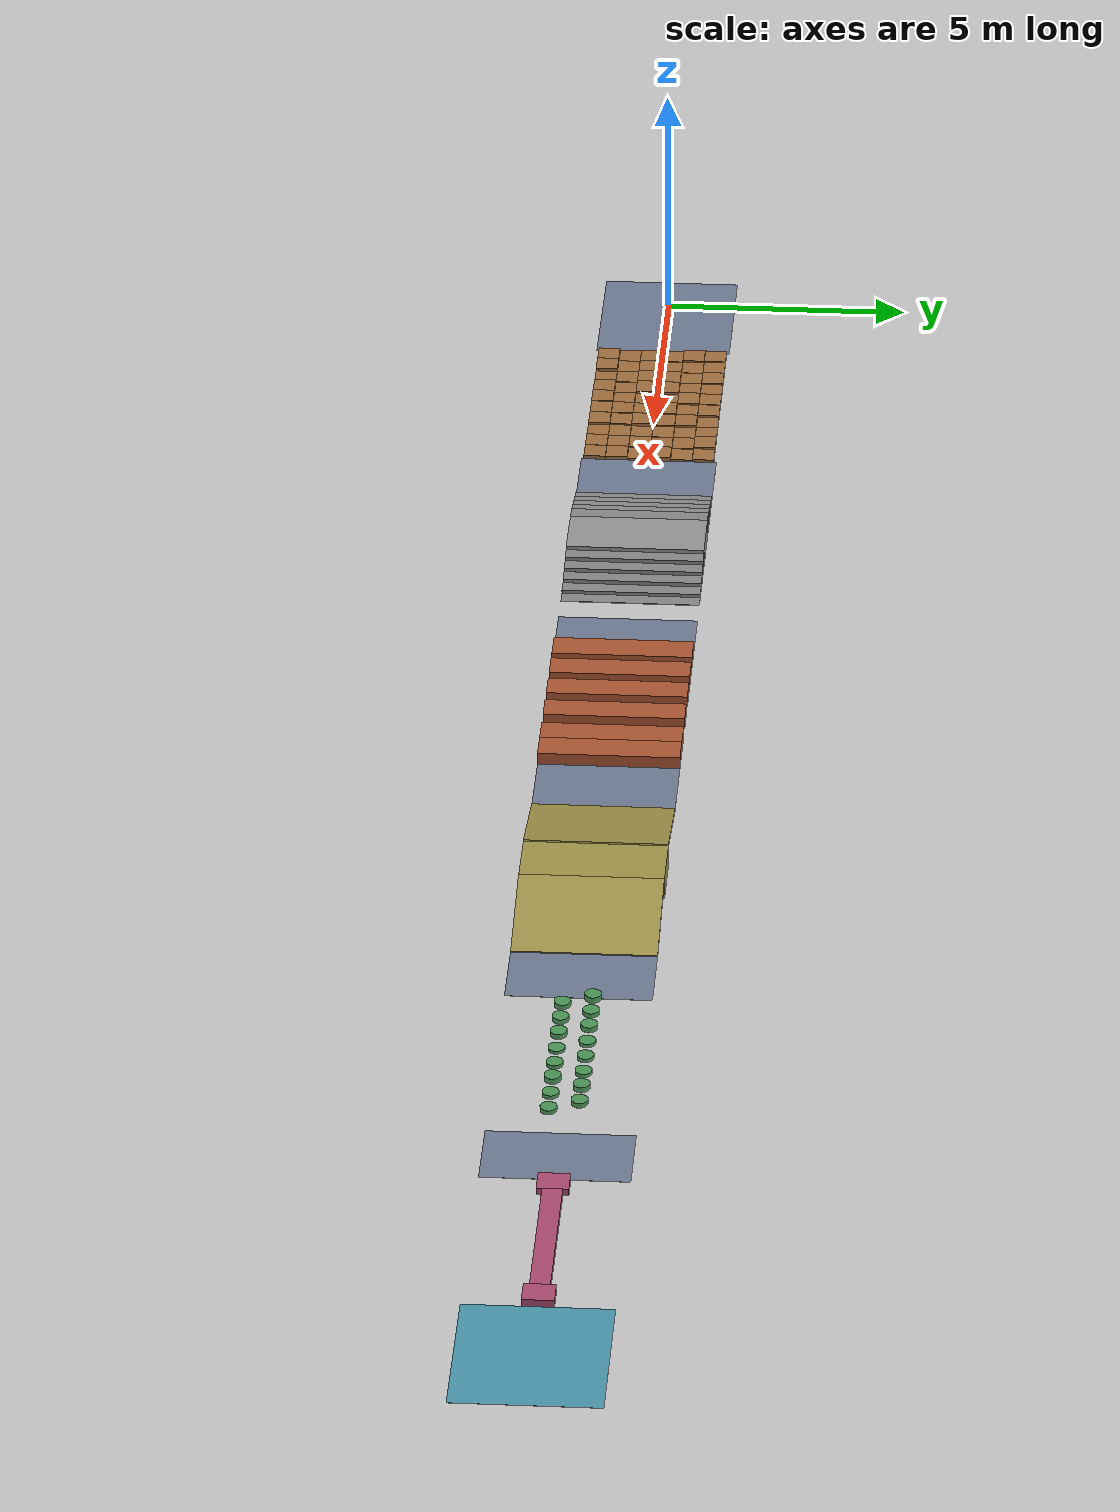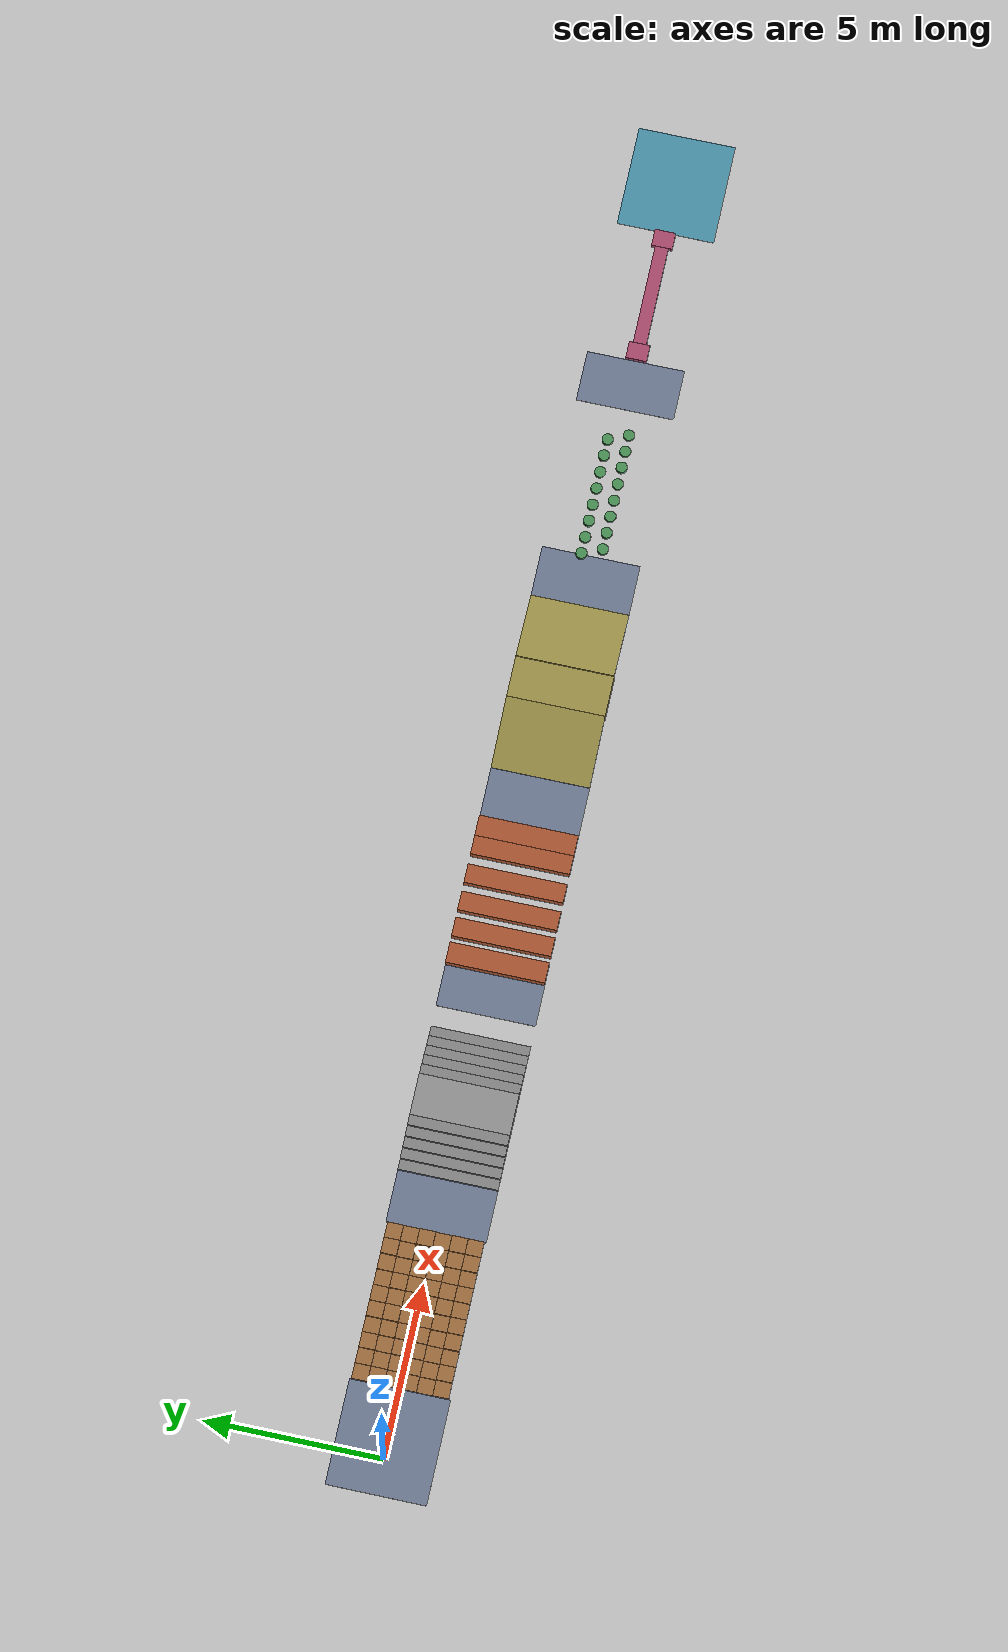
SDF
<?xml version="1.0" ?>
<!-- Auto-generated Continuous Terrain Track along X-axis for Go2 RL deployment -->
<sdf version="1.5">
    <world name="default">
        <physics type="ode">
            <max_step_size>0.0005</max_step_size>
            <real_time_factor>1</real_time_factor>
            <real_time_update_rate>2000</real_time_update_rate>
            <gravity>0 0 -9.81</gravity>
            <ode>
                <solver>
                    <type>quick</type>
                    <iters>50</iters>
                    <sor>1.3</sor>
                </solver>
                <constraints>
                    <cfm>0.0</cfm>
                    <erp>0.2</erp>
                    <contact_max_correcting_vel>10.0</contact_max_correcting_vel>
                    <contact_surface_layer>0.001</contact_surface_layer>
                </constraints>
            </ode>
        </physics>

        <scene>
            <sky>
                <clouds>
                    <speed>12</speed>
                </clouds>
            </sky>
        </scene>

        <!-- Global light source -->
        <include>
            <uri>model://sun</uri>
        </include>

        <!-- Base Ground Plane (Z = 0.0) -->
        <include>
            <uri>model://ground_plane</uri>
        </include>

        <!-- Continuous Terrain Track along X-axis -->
        <model name="terrain_track">
            <static>true</static>

            <link name="zone0_start_mat">
                <pose>0.5000 0.0000 0.001 0 0 0</pose>
                <visual name="zone0_start_mat_vis">
                    <geometry>
                        <box><size>3.0000 2.8000 0.002</size></box>
                    </geometry>
                    <material>
                        <ambient>0.3 0.3 0.35 1</ambient>
                        <diffuse>0.45 0.5 0.6 1</diffuse>
                    </material>
                </visual>
            </link>
            <link name="zone1_box_0_0">
                <pose>2.2250 -1.1250 0.0374 0 0 0</pose>
                <collision name="zone1_box_0_0_col">
                    <geometry>
                        <box><size>0.4450 0.4450 0.0748</size></box>
                    </geometry>
                </collision>
                <visual name="zone1_box_0_0_vis">
                    <geometry>
                        <box><size>0.4450 0.4450 0.0748</size></box>
                    </geometry>
                    <material>
                        <ambient>0.4 0.3 0.2 1</ambient>
                        <diffuse>0.65 0.45 0.25 1</diffuse>
                    </material>
                </visual>
            </link>
            <link name="zone1_box_0_1">
                <pose>2.2250 -0.6750 0.0159 0 0 0</pose>
                <collision name="zone1_box_0_1_col">
                    <geometry>
                        <box><size>0.4450 0.4450 0.0318</size></box>
                    </geometry>
                </collision>
                <visual name="zone1_box_0_1_vis">
                    <geometry>
                        <box><size>0.4450 0.4450 0.0318</size></box>
                    </geometry>
                    <material>
                        <ambient>0.4 0.3 0.2 1</ambient>
                        <diffuse>0.65 0.45 0.25 1</diffuse>
                    </material>
                </visual>
            </link>
            <link name="zone1_box_0_2">
                <pose>2.2250 -0.2250 0.0246 0 0 0</pose>
                <collision name="zone1_box_0_2_col">
                    <geometry>
                        <box><size>0.4450 0.4450 0.0493</size></box>
                    </geometry>
                </collision>
                <visual name="zone1_box_0_2_vis">
                    <geometry>
                        <box><size>0.4450 0.4450 0.0493</size></box>
                    </geometry>
                    <material>
                        <ambient>0.4 0.3 0.2 1</ambient>
                        <diffuse>0.65 0.45 0.25 1</diffuse>
                    </material>
                </visual>
            </link>
            <link name="zone1_box_0_3">
                <pose>2.2250 0.2250 0.0228 0 0 0</pose>
                <collision name="zone1_box_0_3_col">
                    <geometry>
                        <box><size>0.4450 0.4450 0.0456</size></box>
                    </geometry>
                </collision>
                <visual name="zone1_box_0_3_vis">
                    <geometry>
                        <box><size>0.4450 0.4450 0.0456</size></box>
                    </geometry>
                    <material>
                        <ambient>0.4 0.3 0.2 1</ambient>
                        <diffuse>0.65 0.45 0.25 1</diffuse>
                    </material>
                </visual>
            </link>
            <link name="zone1_box_0_4">
                <pose>2.2250 0.6750 0.0408 0 0 0</pose>
                <collision name="zone1_box_0_4_col">
                    <geometry>
                        <box><size>0.4450 0.4450 0.0816</size></box>
                    </geometry>
                </collision>
                <visual name="zone1_box_0_4_vis">
                    <geometry>
                        <box><size>0.4450 0.4450 0.0816</size></box>
                    </geometry>
                    <material>
                        <ambient>0.4 0.3 0.2 1</ambient>
                        <diffuse>0.65 0.45 0.25 1</diffuse>
                    </material>
                </visual>
            </link>
            <link name="zone1_box_0_5">
                <pose>2.2250 1.1250 0.0387 0 0 0</pose>
                <collision name="zone1_box_0_5_col">
                    <geometry>
                        <box><size>0.4450 0.4450 0.0774</size></box>
                    </geometry>
                </collision>
                <visual name="zone1_box_0_5_vis">
                    <geometry>
                        <box><size>0.4450 0.4450 0.0774</size></box>
                    </geometry>
                    <material>
                        <ambient>0.4 0.3 0.2 1</ambient>
                        <diffuse>0.65 0.45 0.25 1</diffuse>
                    </material>
                </visual>
            </link>
            <link name="zone1_box_1_0">
                <pose>2.6750 -1.1250 0.0462 0 0 0</pose>
                <collision name="zone1_box_1_0_col">
                    <geometry>
                        <box><size>0.4450 0.4450 0.0925</size></box>
                    </geometry>
                </collision>
                <visual name="zone1_box_1_0_vis">
                    <geometry>
                        <box><size>0.4450 0.4450 0.0925</size></box>
                    </geometry>
                    <material>
                        <ambient>0.4 0.3 0.2 1</ambient>
                        <diffuse>0.65 0.45 0.25 1</diffuse>
                    </material>
                </visual>
            </link>
            <link name="zone1_box_1_1">
                <pose>2.6750 -0.6750 0.0180 0 0 0</pose>
                <collision name="zone1_box_1_1_col">
                    <geometry>
                        <box><size>0.4450 0.4450 0.0361</size></box>
                    </geometry>
                </collision>
                <visual name="zone1_box_1_1_vis">
                    <geometry>
                        <box><size>0.4450 0.4450 0.0361</size></box>
                    </geometry>
                    <material>
                        <ambient>0.4 0.3 0.2 1</ambient>
                        <diffuse>0.65 0.45 0.25 1</diffuse>
                    </material>
                </visual>
            </link>
            <link name="zone1_box_1_2">
                <pose>2.6750 -0.2250 0.0298 0 0 0</pose>
                <collision name="zone1_box_1_2_col">
                    <geometry>
                        <box><size>0.4450 0.4450 0.0595</size></box>
                    </geometry>
                </collision>
                <visual name="zone1_box_1_2_vis">
                    <geometry>
                        <box><size>0.4450 0.4450 0.0595</size></box>
                    </geometry>
                    <material>
                        <ambient>0.4 0.3 0.2 1</ambient>
                        <diffuse>0.65 0.45 0.25 1</diffuse>
                    </material>
                </visual>
            </link>
            <link name="zone1_box_1_3">
                <pose>2.6750 0.2250 0.0160 0 0 0</pose>
                <collision name="zone1_box_1_3_col">
                    <geometry>
                        <box><size>0.4450 0.4450 0.0321</size></box>
                    </geometry>
                </collision>
                <visual name="zone1_box_1_3_vis">
                    <geometry>
                        <box><size>0.4450 0.4450 0.0321</size></box>
                    </geometry>
                    <material>
                        <ambient>0.4 0.3 0.2 1</ambient>
                        <diffuse>0.65 0.45 0.25 1</diffuse>
                    </material>
                </visual>
            </link>
            <link name="zone1_box_1_4">
                <pose>2.6750 0.6750 0.0227 0 0 0</pose>
                <collision name="zone1_box_1_4_col">
                    <geometry>
                        <box><size>0.4450 0.4450 0.0453</size></box>
                    </geometry>
                </collision>
                <visual name="zone1_box_1_4_vis">
                    <geometry>
                        <box><size>0.4450 0.4450 0.0453</size></box>
                    </geometry>
                    <material>
                        <ambient>0.4 0.3 0.2 1</ambient>
                        <diffuse>0.65 0.45 0.25 1</diffuse>
                    </material>
                </visual>
            </link>
            <link name="zone1_box_1_5">
                <pose>2.6750 1.1250 0.0327 0 0 0</pose>
                <collision name="zone1_box_1_5_col">
                    <geometry>
                        <box><size>0.4450 0.4450 0.0654</size></box>
                    </geometry>
                </collision>
                <visual name="zone1_box_1_5_vis">
                    <geometry>
                        <box><size>0.4450 0.4450 0.0654</size></box>
                    </geometry>
                    <material>
                        <ambient>0.4 0.3 0.2 1</ambient>
                        <diffuse>0.65 0.45 0.25 1</diffuse>
                    </material>
                </visual>
            </link>
            <link name="zone1_box_2_0">
                <pose>3.1250 -1.1250 0.0159 0 0 0</pose>
                <collision name="zone1_box_2_0_col">
                    <geometry>
                        <box><size>0.4450 0.4450 0.0319</size></box>
                    </geometry>
                </collision>
                <visual name="zone1_box_2_0_vis">
                    <geometry>
                        <box><size>0.4450 0.4450 0.0319</size></box>
                    </geometry>
                    <material>
                        <ambient>0.4 0.3 0.2 1</ambient>
                        <diffuse>0.65 0.45 0.25 1</diffuse>
                    </material>
                </visual>
            </link>
            <link name="zone1_box_2_1">
                <pose>3.1250 -0.6750 0.0220 0 0 0</pose>
                <collision name="zone1_box_2_1_col">
                    <geometry>
                        <box><size>0.4450 0.4450 0.0439</size></box>
                    </geometry>
                </collision>
                <visual name="zone1_box_2_1_vis">
                    <geometry>
                        <box><size>0.4450 0.4450 0.0439</size></box>
                    </geometry>
                    <material>
                        <ambient>0.4 0.3 0.2 1</ambient>
                        <diffuse>0.65 0.45 0.25 1</diffuse>
                    </material>
                </visual>
            </link>
            <link name="zone1_box_2_2">
                <pose>3.1250 -0.2250 0.0377 0 0 0</pose>
                <collision name="zone1_box_2_2_col">
                    <geometry>
                        <box><size>0.4450 0.4450 0.0755</size></box>
                    </geometry>
                </collision>
                <visual name="zone1_box_2_2_vis">
                    <geometry>
                        <box><size>0.4450 0.4450 0.0755</size></box>
                    </geometry>
                    <material>
                        <ambient>0.4 0.3 0.2 1</ambient>
                        <diffuse>0.65 0.45 0.25 1</diffuse>
                    </material>
                </visual>
            </link>
            <link name="zone1_box_2_3">
                <pose>3.1250 0.2250 0.0341 0 0 0</pose>
                <collision name="zone1_box_2_3_col">
                    <geometry>
                        <box><size>0.4450 0.4450 0.0681</size></box>
                    </geometry>
                </collision>
                <visual name="zone1_box_2_3_vis">
                    <geometry>
                        <box><size>0.4450 0.4450 0.0681</size></box>
                    </geometry>
                    <material>
                        <ambient>0.4 0.3 0.2 1</ambient>
                        <diffuse>0.65 0.45 0.25 1</diffuse>
                    </material>
                </visual>
            </link>
            <link name="zone1_box_2_4">
                <pose>3.1250 0.6750 0.0227 0 0 0</pose>
                <collision name="zone1_box_2_4_col">
                    <geometry>
                        <box><size>0.4450 0.4450 0.0454</size></box>
                    </geometry>
                </collision>
                <visual name="zone1_box_2_4_vis">
                    <geometry>
                        <box><size>0.4450 0.4450 0.0454</size></box>
                    </geometry>
                    <material>
                        <ambient>0.4 0.3 0.2 1</ambient>
                        <diffuse>0.65 0.45 0.25 1</diffuse>
                    </material>
                </visual>
            </link>
            <link name="zone1_box_2_5">
                <pose>3.1250 1.1250 0.0356 0 0 0</pose>
                <collision name="zone1_box_2_5_col">
                    <geometry>
                        <box><size>0.4450 0.4450 0.0712</size></box>
                    </geometry>
                </collision>
                <visual name="zone1_box_2_5_vis">
                    <geometry>
                        <box><size>0.4450 0.4450 0.0712</size></box>
                    </geometry>
                    <material>
                        <ambient>0.4 0.3 0.2 1</ambient>
                        <diffuse>0.65 0.45 0.25 1</diffuse>
                    </material>
                </visual>
            </link>
            <link name="zone1_box_3_0">
                <pose>3.5750 -1.1250 0.0433 0 0 0</pose>
                <collision name="zone1_box_3_0_col">
                    <geometry>
                        <box><size>0.4450 0.4450 0.0867</size></box>
                    </geometry>
                </collision>
                <visual name="zone1_box_3_0_vis">
                    <geometry>
                        <box><size>0.4450 0.4450 0.0867</size></box>
                    </geometry>
                    <material>
                        <ambient>0.4 0.3 0.2 1</ambient>
                        <diffuse>0.65 0.45 0.25 1</diffuse>
                    </material>
                </visual>
            </link>
            <link name="zone1_box_3_1">
                <pose>3.5750 -0.6750 0.0152 0 0 0</pose>
                <collision name="zone1_box_3_1_col">
                    <geometry>
                        <box><size>0.4450 0.4450 0.0305</size></box>
                    </geometry>
                </collision>
                <visual name="zone1_box_3_1_vis">
                    <geometry>
                        <box><size>0.4450 0.4450 0.0305</size></box>
                    </geometry>
                    <material>
                        <ambient>0.4 0.3 0.2 1</ambient>
                        <diffuse>0.65 0.45 0.25 1</diffuse>
                    </material>
                </visual>
            </link>
            <link name="zone1_box_3_2">
                <pose>3.5750 -0.2250 0.0432 0 0 0</pose>
                <collision name="zone1_box_3_2_col">
                    <geometry>
                        <box><size>0.4450 0.4450 0.0864</size></box>
                    </geometry>
                </collision>
                <visual name="zone1_box_3_2_vis">
                    <geometry>
                        <box><size>0.4450 0.4450 0.0864</size></box>
                    </geometry>
                    <material>
                        <ambient>0.4 0.3 0.2 1</ambient>
                        <diffuse>0.65 0.45 0.25 1</diffuse>
                    </material>
                </visual>
            </link>
            <link name="zone1_box_3_3">
                <pose>3.5750 0.2250 0.0394 0 0 0</pose>
                <collision name="zone1_box_3_3_col">
                    <geometry>
                        <box><size>0.4450 0.4450 0.0789</size></box>
                    </geometry>
                </collision>
                <visual name="zone1_box_3_3_vis">
                    <geometry>
                        <box><size>0.4450 0.4450 0.0789</size></box>
                    </geometry>
                    <material>
                        <ambient>0.4 0.3 0.2 1</ambient>
                        <diffuse>0.65 0.45 0.25 1</diffuse>
                    </material>
                </visual>
            </link>
            <link name="zone1_box_3_4">
                <pose>3.5750 0.6750 0.0269 0 0 0</pose>
                <collision name="zone1_box_3_4_col">
                    <geometry>
                        <box><size>0.4450 0.4450 0.0538</size></box>
                    </geometry>
                </collision>
                <visual name="zone1_box_3_4_vis">
                    <geometry>
                        <box><size>0.4450 0.4450 0.0538</size></box>
                    </geometry>
                    <material>
                        <ambient>0.4 0.3 0.2 1</ambient>
                        <diffuse>0.65 0.45 0.25 1</diffuse>
                    </material>
                </visual>
            </link>
            <link name="zone1_box_3_5">
                <pose>3.5750 1.1250 0.0204 0 0 0</pose>
                <collision name="zone1_box_3_5_col">
                    <geometry>
                        <box><size>0.4450 0.4450 0.0409</size></box>
                    </geometry>
                </collision>
                <visual name="zone1_box_3_5_vis">
                    <geometry>
                        <box><size>0.4450 0.4450 0.0409</size></box>
                    </geometry>
                    <material>
                        <ambient>0.4 0.3 0.2 1</ambient>
                        <diffuse>0.65 0.45 0.25 1</diffuse>
                    </material>
                </visual>
            </link>
            <link name="zone1_box_4_0">
                <pose>4.0250 -1.1250 0.0485 0 0 0</pose>
                <collision name="zone1_box_4_0_col">
                    <geometry>
                        <box><size>0.4450 0.4450 0.0970</size></box>
                    </geometry>
                </collision>
                <visual name="zone1_box_4_0_vis">
                    <geometry>
                        <box><size>0.4450 0.4450 0.0970</size></box>
                    </geometry>
                    <material>
                        <ambient>0.4 0.3 0.2 1</ambient>
                        <diffuse>0.65 0.45 0.25 1</diffuse>
                    </material>
                </visual>
            </link>
            <link name="zone1_box_4_1">
                <pose>4.0250 -0.6750 0.0268 0 0 0</pose>
                <collision name="zone1_box_4_1_col">
                    <geometry>
                        <box><size>0.4450 0.4450 0.0536</size></box>
                    </geometry>
                </collision>
                <visual name="zone1_box_4_1_vis">
                    <geometry>
                        <box><size>0.4450 0.4450 0.0536</size></box>
                    </geometry>
                    <material>
                        <ambient>0.4 0.3 0.2 1</ambient>
                        <diffuse>0.65 0.45 0.25 1</diffuse>
                    </material>
                </visual>
            </link>
            <link name="zone1_box_4_2">
                <pose>4.0250 -0.2250 0.0182 0 0 0</pose>
                <collision name="zone1_box_4_2_col">
                    <geometry>
                        <box><size>0.4450 0.4450 0.0365</size></box>
                    </geometry>
                </collision>
                <visual name="zone1_box_4_2_vis">
                    <geometry>
                        <box><size>0.4450 0.4450 0.0365</size></box>
                    </geometry>
                    <material>
                        <ambient>0.4 0.3 0.2 1</ambient>
                        <diffuse>0.65 0.45 0.25 1</diffuse>
                    </material>
                </visual>
            </link>
            <link name="zone1_box_4_3">
                <pose>4.0250 0.2250 0.0184 0 0 0</pose>
                <collision name="zone1_box_4_3_col">
                    <geometry>
                        <box><size>0.4450 0.4450 0.0368</size></box>
                    </geometry>
                </collision>
                <visual name="zone1_box_4_3_vis">
                    <geometry>
                        <box><size>0.4450 0.4450 0.0368</size></box>
                    </geometry>
                    <material>
                        <ambient>0.4 0.3 0.2 1</ambient>
                        <diffuse>0.65 0.45 0.25 1</diffuse>
                    </material>
                </visual>
            </link>
            <link name="zone1_box_4_4">
                <pose>4.0250 0.6750 0.0447 0 0 0</pose>
                <collision name="zone1_box_4_4_col">
                    <geometry>
                        <box><size>0.4450 0.4450 0.0893</size></box>
                    </geometry>
                </collision>
                <visual name="zone1_box_4_4_vis">
                    <geometry>
                        <box><size>0.4450 0.4450 0.0893</size></box>
                    </geometry>
                    <material>
                        <ambient>0.4 0.3 0.2 1</ambient>
                        <diffuse>0.65 0.45 0.25 1</diffuse>
                    </material>
                </visual>
            </link>
            <link name="zone1_box_4_5">
                <pose>4.0250 1.1250 0.0361 0 0 0</pose>
                <collision name="zone1_box_4_5_col">
                    <geometry>
                        <box><size>0.4450 0.4450 0.0723</size></box>
                    </geometry>
                </collision>
                <visual name="zone1_box_4_5_vis">
                    <geometry>
                        <box><size>0.4450 0.4450 0.0723</size></box>
                    </geometry>
                    <material>
                        <ambient>0.4 0.3 0.2 1</ambient>
                        <diffuse>0.65 0.45 0.25 1</diffuse>
                    </material>
                </visual>
            </link>
            <link name="zone1_box_5_0">
                <pose>4.4750 -1.1250 0.0432 0 0 0</pose>
                <collision name="zone1_box_5_0_col">
                    <geometry>
                        <box><size>0.4450 0.4450 0.0865</size></box>
                    </geometry>
                </collision>
                <visual name="zone1_box_5_0_vis">
                    <geometry>
                        <box><size>0.4450 0.4450 0.0865</size></box>
                    </geometry>
                    <material>
                        <ambient>0.4 0.3 0.2 1</ambient>
                        <diffuse>0.65 0.45 0.25 1</diffuse>
                    </material>
                </visual>
            </link>
            <link name="zone1_box_5_1">
                <pose>4.4750 -0.6750 0.0405 0 0 0</pose>
                <collision name="zone1_box_5_1_col">
                    <geometry>
                        <box><size>0.4450 0.4450 0.0811</size></box>
                    </geometry>
                </collision>
                <visual name="zone1_box_5_1_vis">
                    <geometry>
                        <box><size>0.4450 0.4450 0.0811</size></box>
                    </geometry>
                    <material>
                        <ambient>0.4 0.3 0.2 1</ambient>
                        <diffuse>0.65 0.45 0.25 1</diffuse>
                    </material>
                </visual>
            </link>
            <link name="zone1_box_5_2">
                <pose>4.4750 -0.2250 0.0338 0 0 0</pose>
                <collision name="zone1_box_5_2_col">
                    <geometry>
                        <box><size>0.4450 0.4450 0.0675</size></box>
                    </geometry>
                </collision>
                <visual name="zone1_box_5_2_vis">
                    <geometry>
                        <box><size>0.4450 0.4450 0.0675</size></box>
                    </geometry>
                    <material>
                        <ambient>0.4 0.3 0.2 1</ambient>
                        <diffuse>0.65 0.45 0.25 1</diffuse>
                    </material>
                </visual>
            </link>
            <link name="zone1_box_5_3">
                <pose>4.4750 0.2250 0.0491 0 0 0</pose>
                <collision name="zone1_box_5_3_col">
                    <geometry>
                        <box><size>0.4450 0.4450 0.0981</size></box>
                    </geometry>
                </collision>
                <visual name="zone1_box_5_3_vis">
                    <geometry>
                        <box><size>0.4450 0.4450 0.0981</size></box>
                    </geometry>
                    <material>
                        <ambient>0.4 0.3 0.2 1</ambient>
                        <diffuse>0.65 0.45 0.25 1</diffuse>
                    </material>
                </visual>
            </link>
            <link name="zone1_box_5_4">
                <pose>4.4750 0.6750 0.0282 0 0 0</pose>
                <collision name="zone1_box_5_4_col">
                    <geometry>
                        <box><size>0.4450 0.4450 0.0565</size></box>
                    </geometry>
                </collision>
                <visual name="zone1_box_5_4_vis">
                    <geometry>
                        <box><size>0.4450 0.4450 0.0565</size></box>
                    </geometry>
                    <material>
                        <ambient>0.4 0.3 0.2 1</ambient>
                        <diffuse>0.65 0.45 0.25 1</diffuse>
                    </material>
                </visual>
            </link>
            <link name="zone1_box_5_5">
                <pose>4.4750 1.1250 0.0343 0 0 0</pose>
                <collision name="zone1_box_5_5_col">
                    <geometry>
                        <box><size>0.4450 0.4450 0.0686</size></box>
                    </geometry>
                </collision>
                <visual name="zone1_box_5_5_vis">
                    <geometry>
                        <box><size>0.4450 0.4450 0.0686</size></box>
                    </geometry>
                    <material>
                        <ambient>0.4 0.3 0.2 1</ambient>
                        <diffuse>0.65 0.45 0.25 1</diffuse>
                    </material>
                </visual>
            </link>
            <link name="zone1_box_6_0">
                <pose>4.9250 -1.1250 0.0440 0 0 0</pose>
                <collision name="zone1_box_6_0_col">
                    <geometry>
                        <box><size>0.4450 0.4450 0.0881</size></box>
                    </geometry>
                </collision>
                <visual name="zone1_box_6_0_vis">
                    <geometry>
                        <box><size>0.4450 0.4450 0.0881</size></box>
                    </geometry>
                    <material>
                        <ambient>0.4 0.3 0.2 1</ambient>
                        <diffuse>0.65 0.45 0.25 1</diffuse>
                    </material>
                </visual>
            </link>
            <link name="zone1_box_6_1">
                <pose>4.9250 -0.6750 0.0366 0 0 0</pose>
                <collision name="zone1_box_6_1_col">
                    <geometry>
                        <box><size>0.4450 0.4450 0.0733</size></box>
                    </geometry>
                </collision>
                <visual name="zone1_box_6_1_vis">
                    <geometry>
                        <box><size>0.4450 0.4450 0.0733</size></box>
                    </geometry>
                    <material>
                        <ambient>0.4 0.3 0.2 1</ambient>
                        <diffuse>0.65 0.45 0.25 1</diffuse>
                    </material>
                </visual>
            </link>
            <link name="zone1_box_6_2">
                <pose>4.9250 -0.2250 0.0452 0 0 0</pose>
                <collision name="zone1_box_6_2_col">
                    <geometry>
                        <box><size>0.4450 0.4450 0.0903</size></box>
                    </geometry>
                </collision>
                <visual name="zone1_box_6_2_vis">
                    <geometry>
                        <box><size>0.4450 0.4450 0.0903</size></box>
                    </geometry>
                    <material>
                        <ambient>0.4 0.3 0.2 1</ambient>
                        <diffuse>0.65 0.45 0.25 1</diffuse>
                    </material>
                </visual>
            </link>
            <link name="zone1_box_6_3">
                <pose>4.9250 0.2250 0.0352 0 0 0</pose>
                <collision name="zone1_box_6_3_col">
                    <geometry>
                        <box><size>0.4450 0.4450 0.0704</size></box>
                    </geometry>
                </collision>
                <visual name="zone1_box_6_3_vis">
                    <geometry>
                        <box><size>0.4450 0.4450 0.0704</size></box>
                    </geometry>
                    <material>
                        <ambient>0.4 0.3 0.2 1</ambient>
                        <diffuse>0.65 0.45 0.25 1</diffuse>
                    </material>
                </visual>
            </link>
            <link name="zone1_box_6_4">
                <pose>4.9250 0.6750 0.0397 0 0 0</pose>
                <collision name="zone1_box_6_4_col">
                    <geometry>
                        <box><size>0.4450 0.4450 0.0793</size></box>
                    </geometry>
                </collision>
                <visual name="zone1_box_6_4_vis">
                    <geometry>
                        <box><size>0.4450 0.4450 0.0793</size></box>
                    </geometry>
                    <material>
                        <ambient>0.4 0.3 0.2 1</ambient>
                        <diffuse>0.65 0.45 0.25 1</diffuse>
                    </material>
                </visual>
            </link>
            <link name="zone1_box_6_5">
                <pose>4.9250 1.1250 0.0166 0 0 0</pose>
                <collision name="zone1_box_6_5_col">
                    <geometry>
                        <box><size>0.4450 0.4450 0.0332</size></box>
                    </geometry>
                </collision>
                <visual name="zone1_box_6_5_vis">
                    <geometry>
                        <box><size>0.4450 0.4450 0.0332</size></box>
                    </geometry>
                    <material>
                        <ambient>0.4 0.3 0.2 1</ambient>
                        <diffuse>0.65 0.45 0.25 1</diffuse>
                    </material>
                </visual>
            </link>
            <link name="zone1_box_7_0">
                <pose>5.3750 -1.1250 0.0230 0 0 0</pose>
                <collision name="zone1_box_7_0_col">
                    <geometry>
                        <box><size>0.4450 0.4450 0.0460</size></box>
                    </geometry>
                </collision>
                <visual name="zone1_box_7_0_vis">
                    <geometry>
                        <box><size>0.4450 0.4450 0.0460</size></box>
                    </geometry>
                    <material>
                        <ambient>0.4 0.3 0.2 1</ambient>
                        <diffuse>0.65 0.45 0.25 1</diffuse>
                    </material>
                </visual>
            </link>
            <link name="zone1_box_7_1">
                <pose>5.3750 -0.6750 0.0251 0 0 0</pose>
                <collision name="zone1_box_7_1_col">
                    <geometry>
                        <box><size>0.4450 0.4450 0.0503</size></box>
                    </geometry>
                </collision>
                <visual name="zone1_box_7_1_vis">
                    <geometry>
                        <box><size>0.4450 0.4450 0.0503</size></box>
                    </geometry>
                    <material>
                        <ambient>0.4 0.3 0.2 1</ambient>
                        <diffuse>0.65 0.45 0.25 1</diffuse>
                    </material>
                </visual>
            </link>
            <link name="zone1_box_7_2">
                <pose>5.3750 -0.2250 0.0178 0 0 0</pose>
                <collision name="zone1_box_7_2_col">
                    <geometry>
                        <box><size>0.4450 0.4450 0.0356</size></box>
                    </geometry>
                </collision>
                <visual name="zone1_box_7_2_vis">
                    <geometry>
                        <box><size>0.4450 0.4450 0.0356</size></box>
                    </geometry>
                    <material>
                        <ambient>0.4 0.3 0.2 1</ambient>
                        <diffuse>0.65 0.45 0.25 1</diffuse>
                    </material>
                </visual>
            </link>
            <link name="zone1_box_7_3">
                <pose>5.3750 0.2250 0.0231 0 0 0</pose>
                <collision name="zone1_box_7_3_col">
                    <geometry>
                        <box><size>0.4450 0.4450 0.0463</size></box>
                    </geometry>
                </collision>
                <visual name="zone1_box_7_3_vis">
                    <geometry>
                        <box><size>0.4450 0.4450 0.0463</size></box>
                    </geometry>
                    <material>
                        <ambient>0.4 0.3 0.2 1</ambient>
                        <diffuse>0.65 0.45 0.25 1</diffuse>
                    </material>
                </visual>
            </link>
            <link name="zone1_box_7_4">
                <pose>5.3750 0.6750 0.0185 0 0 0</pose>
                <collision name="zone1_box_7_4_col">
                    <geometry>
                        <box><size>0.4450 0.4450 0.0371</size></box>
                    </geometry>
                </collision>
                <visual name="zone1_box_7_4_vis">
                    <geometry>
                        <box><size>0.4450 0.4450 0.0371</size></box>
                    </geometry>
                    <material>
                        <ambient>0.4 0.3 0.2 1</ambient>
                        <diffuse>0.65 0.45 0.25 1</diffuse>
                    </material>
                </visual>
            </link>
            <link name="zone1_box_7_5">
                <pose>5.3750 1.1250 0.0247 0 0 0</pose>
                <collision name="zone1_box_7_5_col">
                    <geometry>
                        <box><size>0.4450 0.4450 0.0495</size></box>
                    </geometry>
                </collision>
                <visual name="zone1_box_7_5_vis">
                    <geometry>
                        <box><size>0.4450 0.4450 0.0495</size></box>
                    </geometry>
                    <material>
                        <ambient>0.4 0.3 0.2 1</ambient>
                        <diffuse>0.65 0.45 0.25 1</diffuse>
                    </material>
                </visual>
            </link>
            <link name="zone1_box_8_0">
                <pose>5.8250 -1.1250 0.0372 0 0 0</pose>
                <collision name="zone1_box_8_0_col">
                    <geometry>
                        <box><size>0.4450 0.4450 0.0745</size></box>
                    </geometry>
                </collision>
                <visual name="zone1_box_8_0_vis">
                    <geometry>
                        <box><size>0.4450 0.4450 0.0745</size></box>
                    </geometry>
                    <material>
                        <ambient>0.4 0.3 0.2 1</ambient>
                        <diffuse>0.65 0.45 0.25 1</diffuse>
                    </material>
                </visual>
            </link>
            <link name="zone1_box_8_1">
                <pose>5.8250 -0.6750 0.0278 0 0 0</pose>
                <collision name="zone1_box_8_1_col">
                    <geometry>
                        <box><size>0.4450 0.4450 0.0555</size></box>
                    </geometry>
                </collision>
                <visual name="zone1_box_8_1_vis">
                    <geometry>
                        <box><size>0.4450 0.4450 0.0555</size></box>
                    </geometry>
                    <material>
                        <ambient>0.4 0.3 0.2 1</ambient>
                        <diffuse>0.65 0.45 0.25 1</diffuse>
                    </material>
                </visual>
            </link>
            <link name="zone1_box_8_2">
                <pose>5.8250 -0.2250 0.0280 0 0 0</pose>
                <collision name="zone1_box_8_2_col">
                    <geometry>
                        <box><size>0.4450 0.4450 0.0559</size></box>
                    </geometry>
                </collision>
                <visual name="zone1_box_8_2_vis">
                    <geometry>
                        <box><size>0.4450 0.4450 0.0559</size></box>
                    </geometry>
                    <material>
                        <ambient>0.4 0.3 0.2 1</ambient>
                        <diffuse>0.65 0.45 0.25 1</diffuse>
                    </material>
                </visual>
            </link>
            <link name="zone1_box_8_3">
                <pose>5.8250 0.2250 0.0223 0 0 0</pose>
                <collision name="zone1_box_8_3_col">
                    <geometry>
                        <box><size>0.4450 0.4450 0.0447</size></box>
                    </geometry>
                </collision>
                <visual name="zone1_box_8_3_vis">
                    <geometry>
                        <box><size>0.4450 0.4450 0.0447</size></box>
                    </geometry>
                    <material>
                        <ambient>0.4 0.3 0.2 1</ambient>
                        <diffuse>0.65 0.45 0.25 1</diffuse>
                    </material>
                </visual>
            </link>
            <link name="zone1_box_8_4">
                <pose>5.8250 0.6750 0.0243 0 0 0</pose>
                <collision name="zone1_box_8_4_col">
                    <geometry>
                        <box><size>0.4450 0.4450 0.0487</size></box>
                    </geometry>
                </collision>
                <visual name="zone1_box_8_4_vis">
                    <geometry>
                        <box><size>0.4450 0.4450 0.0487</size></box>
                    </geometry>
                    <material>
                        <ambient>0.4 0.3 0.2 1</ambient>
                        <diffuse>0.65 0.45 0.25 1</diffuse>
                    </material>
                </visual>
            </link>
            <link name="zone1_box_8_5">
                <pose>5.8250 1.1250 0.0478 0 0 0</pose>
                <collision name="zone1_box_8_5_col">
                    <geometry>
                        <box><size>0.4450 0.4450 0.0956</size></box>
                    </geometry>
                </collision>
                <visual name="zone1_box_8_5_vis">
                    <geometry>
                        <box><size>0.4450 0.4450 0.0956</size></box>
                    </geometry>
                    <material>
                        <ambient>0.4 0.3 0.2 1</ambient>
                        <diffuse>0.65 0.45 0.25 1</diffuse>
                    </material>
                </visual>
            </link>
            <link name="zone1_box_9_0">
                <pose>6.2750 -1.1250 0.0377 0 0 0</pose>
                <collision name="zone1_box_9_0_col">
                    <geometry>
                        <box><size>0.4450 0.4450 0.0754</size></box>
                    </geometry>
                </collision>
                <visual name="zone1_box_9_0_vis">
                    <geometry>
                        <box><size>0.4450 0.4450 0.0754</size></box>
                    </geometry>
                    <material>
                        <ambient>0.4 0.3 0.2 1</ambient>
                        <diffuse>0.65 0.45 0.25 1</diffuse>
                    </material>
                </visual>
            </link>
            <link name="zone1_box_9_1">
                <pose>6.2750 -0.6750 0.0363 0 0 0</pose>
                <collision name="zone1_box_9_1_col">
                    <geometry>
                        <box><size>0.4450 0.4450 0.0726</size></box>
                    </geometry>
                </collision>
                <visual name="zone1_box_9_1_vis">
                    <geometry>
                        <box><size>0.4450 0.4450 0.0726</size></box>
                    </geometry>
                    <material>
                        <ambient>0.4 0.3 0.2 1</ambient>
                        <diffuse>0.65 0.45 0.25 1</diffuse>
                    </material>
                </visual>
            </link>
            <link name="zone1_box_9_2">
                <pose>6.2750 -0.2250 0.0210 0 0 0</pose>
                <collision name="zone1_box_9_2_col">
                    <geometry>
                        <box><size>0.4450 0.4450 0.0420</size></box>
                    </geometry>
                </collision>
                <visual name="zone1_box_9_2_vis">
                    <geometry>
                        <box><size>0.4450 0.4450 0.0420</size></box>
                    </geometry>
                    <material>
                        <ambient>0.4 0.3 0.2 1</ambient>
                        <diffuse>0.65 0.45 0.25 1</diffuse>
                    </material>
                </visual>
            </link>
            <link name="zone1_box_9_3">
                <pose>6.2750 0.2250 0.0405 0 0 0</pose>
                <collision name="zone1_box_9_3_col">
                    <geometry>
                        <box><size>0.4450 0.4450 0.0810</size></box>
                    </geometry>
                </collision>
                <visual name="zone1_box_9_3_vis">
                    <geometry>
                        <box><size>0.4450 0.4450 0.0810</size></box>
                    </geometry>
                    <material>
                        <ambient>0.4 0.3 0.2 1</ambient>
                        <diffuse>0.65 0.45 0.25 1</diffuse>
                    </material>
                </visual>
            </link>
            <link name="zone1_box_9_4">
                <pose>6.2750 0.6750 0.0207 0 0 0</pose>
                <collision name="zone1_box_9_4_col">
                    <geometry>
                        <box><size>0.4450 0.4450 0.0414</size></box>
                    </geometry>
                </collision>
                <visual name="zone1_box_9_4_vis">
                    <geometry>
                        <box><size>0.4450 0.4450 0.0414</size></box>
                    </geometry>
                    <material>
                        <ambient>0.4 0.3 0.2 1</ambient>
                        <diffuse>0.65 0.45 0.25 1</diffuse>
                    </material>
                </visual>
            </link>
            <link name="zone1_box_9_5">
                <pose>6.2750 1.1250 0.0283 0 0 0</pose>
                <collision name="zone1_box_9_5_col">
                    <geometry>
                        <box><size>0.4450 0.4450 0.0566</size></box>
                    </geometry>
                </collision>
                <visual name="zone1_box_9_5_vis">
                    <geometry>
                        <box><size>0.4450 0.4450 0.0566</size></box>
                    </geometry>
                    <material>
                        <ambient>0.4 0.3 0.2 1</ambient>
                        <diffuse>0.65 0.45 0.25 1</diffuse>
                    </material>
                </visual>
            </link>
            <link name="trans1_mat">
                <pose>7.2500 0.0000 0.001 0 0 0</pose>
                <visual name="trans1_mat_vis">
                    <geometry>
                        <box><size>1.5000 2.8000 0.002</size></box>
                    </geometry>
                    <material>
                        <ambient>0.3 0.3 0.35 1</ambient>
                        <diffuse>0.45 0.5 0.6 1</diffuse>
                    </material>
                </visual>
            </link>
            <link name="zone2_stair_up_0">
                <pose>8.1500 0.0000 0.0400 0 0 0</pose>
                <collision name="zone2_stair_up_0_col">
                    <geometry>
                        <box><size>0.3000 2.8000 0.0800</size></box>
                    </geometry>
                </collision>
                <visual name="zone2_stair_up_0_vis">
                    <geometry>
                        <box><size>0.3000 2.8000 0.0800</size></box>
                    </geometry>
                    <material>
                        <ambient>0.35 0.35 0.35 1</ambient>
                        <diffuse>0.55 0.55 0.55 1</diffuse>
                    </material>
                </visual>
            </link>
            <link name="zone2_stair_up_1">
                <pose>8.4500 0.0000 0.0800 0 0 0</pose>
                <collision name="zone2_stair_up_1_col">
                    <geometry>
                        <box><size>0.3000 2.8000 0.1600</size></box>
                    </geometry>
                </collision>
                <visual name="zone2_stair_up_1_vis">
                    <geometry>
                        <box><size>0.3000 2.8000 0.1600</size></box>
                    </geometry>
                    <material>
                        <ambient>0.35 0.35 0.35 1</ambient>
                        <diffuse>0.55 0.55 0.55 1</diffuse>
                    </material>
                </visual>
            </link>
            <link name="zone2_stair_up_2">
                <pose>8.7500 0.0000 0.1200 0 0 0</pose>
                <collision name="zone2_stair_up_2_col">
                    <geometry>
                        <box><size>0.3000 2.8000 0.2400</size></box>
                    </geometry>
                </collision>
                <visual name="zone2_stair_up_2_vis">
                    <geometry>
                        <box><size>0.3000 2.8000 0.2400</size></box>
                    </geometry>
                    <material>
                        <ambient>0.35 0.35 0.35 1</ambient>
                        <diffuse>0.55 0.55 0.55 1</diffuse>
                    </material>
                </visual>
            </link>
            <link name="zone2_stair_up_3">
                <pose>9.0500 0.0000 0.1600 0 0 0</pose>
                <collision name="zone2_stair_up_3_col">
                    <geometry>
                        <box><size>0.3000 2.8000 0.3200</size></box>
                    </geometry>
                </collision>
                <visual name="zone2_stair_up_3_vis">
                    <geometry>
                        <box><size>0.3000 2.8000 0.3200</size></box>
                    </geometry>
                    <material>
                        <ambient>0.35 0.35 0.35 1</ambient>
                        <diffuse>0.55 0.55 0.55 1</diffuse>
                    </material>
                </visual>
            </link>
            <link name="zone2_stair_up_4">
                <pose>9.3500 0.0000 0.2000 0 0 0</pose>
                <collision name="zone2_stair_up_4_col">
                    <geometry>
                        <box><size>0.3000 2.8000 0.4000</size></box>
                    </geometry>
                </collision>
                <visual name="zone2_stair_up_4_vis">
                    <geometry>
                        <box><size>0.3000 2.8000 0.4000</size></box>
                    </geometry>
                    <material>
                        <ambient>0.35 0.35 0.35 1</ambient>
                        <diffuse>0.55 0.55 0.55 1</diffuse>
                    </material>
                </visual>
            </link>
            <link name="zone2_stairs_top">
                <pose>10.1000 0.0000 0.2000 0 0 0</pose>
                <collision name="zone2_stairs_top_col">
                    <geometry>
                        <box><size>1.2000 2.8000 0.4000</size></box>
                    </geometry>
                </collision>
                <visual name="zone2_stairs_top_vis">
                    <geometry>
                        <box><size>1.2000 2.8000 0.4000</size></box>
                    </geometry>
                    <material>
                        <ambient>0.4 0.4 0.4 1</ambient>
                        <diffuse>0.6 0.6 0.6 1</diffuse>
                    </material>
                </visual>
            </link>
            <link name="zone2_stair_down_0">
                <pose>10.8500 0.0000 0.1600 0 0 0</pose>
                <collision name="zone2_stair_down_0_col">
                    <geometry>
                        <box><size>0.3000 2.8000 0.3200</size></box>
                    </geometry>
                </collision>
                <visual name="zone2_stair_down_0_vis">
                    <geometry>
                        <box><size>0.3000 2.8000 0.3200</size></box>
                    </geometry>
                    <material>
                        <ambient>0.35 0.35 0.35 1</ambient>
                        <diffuse>0.55 0.55 0.55 1</diffuse>
                    </material>
                </visual>
            </link>
            <link name="zone2_stair_down_1">
                <pose>11.1500 0.0000 0.1200 0 0 0</pose>
                <collision name="zone2_stair_down_1_col">
                    <geometry>
                        <box><size>0.3000 2.8000 0.2400</size></box>
                    </geometry>
                </collision>
                <visual name="zone2_stair_down_1_vis">
                    <geometry>
                        <box><size>0.3000 2.8000 0.2400</size></box>
                    </geometry>
                    <material>
                        <ambient>0.35 0.35 0.35 1</ambient>
                        <diffuse>0.55 0.55 0.55 1</diffuse>
                    </material>
                </visual>
            </link>
            <link name="zone2_stair_down_2">
                <pose>11.4500 0.0000 0.0800 0 0 0</pose>
                <collision name="zone2_stair_down_2_col">
                    <geometry>
                        <box><size>0.3000 2.8000 0.1600</size></box>
                    </geometry>
                </collision>
                <visual name="zone2_stair_down_2_vis">
                    <geometry>
                        <box><size>0.3000 2.8000 0.1600</size></box>
                    </geometry>
                    <material>
                        <ambient>0.35 0.35 0.35 1</ambient>
                        <diffuse>0.55 0.55 0.55 1</diffuse>
                    </material>
                </visual>
            </link>
            <link name="zone2_stair_down_3">
                <pose>11.7500 0.0000 0.0400 0 0 0</pose>
                <collision name="zone2_stair_down_3_col">
                    <geometry>
                        <box><size>0.3000 2.8000 0.0800</size></box>
                    </geometry>
                </collision>
                <visual name="zone2_stair_down_3_vis">
                    <geometry>
                        <box><size>0.3000 2.8000 0.0800</size></box>
                    </geometry>
                    <material>
                        <ambient>0.35 0.35 0.35 1</ambient>
                        <diffuse>0.55 0.55 0.55 1</diffuse>
                    </material>
                </visual>
            </link>
            <link name="zone2_stair_down_4">
                <pose>12.0500 0.0000 0.0050 0 0 0</pose>
                <collision name="zone2_stair_down_4_col">
                    <geometry>
                        <box><size>0.3000 2.8000 0.0100</size></box>
                    </geometry>
                </collision>
                <visual name="zone2_stair_down_4_vis">
                    <geometry>
                        <box><size>0.3000 2.8000 0.0100</size></box>
                    </geometry>
                    <material>
                        <ambient>0.35 0.35 0.35 1</ambient>
                        <diffuse>0.55 0.55 0.55 1</diffuse>
                    </material>
                </visual>
            </link>
            <link name="trans2_mat">
                <pose>13.4000 0.0000 0.001 0 0 0</pose>
                <visual name="trans2_mat_vis">
                    <geometry>
                        <box><size>1.2000 2.8000 0.002</size></box>
                    </geometry>
                    <material>
                        <ambient>0.3 0.3 0.35 1</ambient>
                        <diffuse>0.45 0.5 0.6 1</diffuse>
                    </material>
                </visual>
            </link>
            <link name="zone3_entry_step">
                <pose>14.3000 0.0000 0.1250 0 0 0</pose>
                <collision name="zone3_entry_step_col">
                    <geometry>
                        <box><size>0.6000 2.8000 0.2500</size></box>
                    </geometry>
                </collision>
                <visual name="zone3_entry_step_vis">
                    <geometry>
                        <box><size>0.6000 2.8000 0.2500</size></box>
                    </geometry>
                    <material>
                        <ambient>0.45 0.25 0.15 1</ambient>
                        <diffuse>0.7 0.35 0.2 1</diffuse>
                    </material>
                </visual>
            </link>
            <link name="zone3_gap_plank_0">
                <pose>15.0550 0.0000 0.1250 0 0 0</pose>
                <collision name="zone3_gap_plank_0_col">
                    <geometry>
                        <box><size>0.5500 2.8000 0.2500</size></box>
                    </geometry>
                </collision>
                <visual name="zone3_gap_plank_0_vis">
                    <geometry>
                        <box><size>0.5500 2.8000 0.2500</size></box>
                    </geometry>
                    <material>
                        <ambient>0.45 0.25 0.15 1</ambient>
                        <diffuse>0.7 0.35 0.2 1</diffuse>
                    </material>
                </visual>
            </link>
            <link name="zone3_gap_plank_1">
                <pose>15.8250 0.0000 0.1250 0 0 0</pose>
                <collision name="zone3_gap_plank_1_col">
                    <geometry>
                        <box><size>0.5500 2.8000 0.2500</size></box>
                    </geometry>
                </collision>
                <visual name="zone3_gap_plank_1_vis">
                    <geometry>
                        <box><size>0.5500 2.8000 0.2500</size></box>
                    </geometry>
                    <material>
                        <ambient>0.45 0.25 0.15 1</ambient>
                        <diffuse>0.7 0.35 0.2 1</diffuse>
                    </material>
                </visual>
            </link>
            <link name="zone3_gap_plank_2">
                <pose>16.6350 0.0000 0.1250 0 0 0</pose>
                <collision name="zone3_gap_plank_2_col">
                    <geometry>
                        <box><size>0.5500 2.8000 0.2500</size></box>
                    </geometry>
                </collision>
                <visual name="zone3_gap_plank_2_vis">
                    <geometry>
                        <box><size>0.5500 2.8000 0.2500</size></box>
                    </geometry>
                    <material>
                        <ambient>0.45 0.25 0.15 1</ambient>
                        <diffuse>0.7 0.35 0.2 1</diffuse>
                    </material>
                </visual>
            </link>
            <link name="zone3_gap_plank_3">
                <pose>17.4850 0.0000 0.1250 0 0 0</pose>
                <collision name="zone3_gap_plank_3_col">
                    <geometry>
                        <box><size>0.5500 2.8000 0.2500</size></box>
                    </geometry>
                </collision>
                <visual name="zone3_gap_plank_3_vis">
                    <geometry>
                        <box><size>0.5500 2.8000 0.2500</size></box>
                    </geometry>
                    <material>
                        <ambient>0.45 0.25 0.15 1</ambient>
                        <diffuse>0.7 0.35 0.2 1</diffuse>
                    </material>
                </visual>
            </link>
            <link name="zone3_exit_step">
                <pose>18.0600 0.0000 0.1250 0 0 0</pose>
                <collision name="zone3_exit_step_col">
                    <geometry>
                        <box><size>0.6000 2.8000 0.2500</size></box>
                    </geometry>
                </collision>
                <visual name="zone3_exit_step_vis">
                    <geometry>
                        <box><size>0.6000 2.8000 0.2500</size></box>
                    </geometry>
                    <material>
                        <ambient>0.45 0.25 0.15 1</ambient>
                        <diffuse>0.7 0.35 0.2 1</diffuse>
                    </material>
                </visual>
            </link>
            <link name="trans3_mat">
                <pose>19.1100 0.0000 0.001 0 0 0</pose>
                <visual name="trans3_mat_vis">
                    <geometry>
                        <box><size>1.5000 2.8000 0.002</size></box>
                    </geometry>
                    <material>
                        <ambient>0.3 0.3 0.35 1</ambient>
                        <diffuse>0.45 0.5 0.6 1</diffuse>
                    </material>
                </visual>
            </link>
            <link name="zone4_ramp_up">
                <pose>20.8600 0.0000 0.2250 0 -0.2213 0</pose>
                <collision name="zone4_ramp_up_col">
                    <geometry>
                        <box><size>2.0500 2.8000 0.0600</size></box>
                    </geometry>
                </collision>
                <visual name="zone4_ramp_up_vis">
                    <geometry>
                        <box><size>2.0500 2.8000 0.0600</size></box>
                    </geometry>
                    <material>
                        <ambient>0.35 0.35 0.2 1</ambient>
                        <diffuse>0.65 0.6 0.3 1</diffuse>
                    </material>
                </visual>
            </link>
            <link name="zone4_ramp_peak">
                <pose>22.4600 0.0000 0.2250 0 0 0</pose>
                <collision name="zone4_ramp_peak_col">
                    <geometry>
                        <box><size>1.2000 2.8000 0.4500</size></box>
                    </geometry>
                </collision>
                <visual name="zone4_ramp_peak_vis">
                    <geometry>
                        <box><size>1.2000 2.8000 0.4500</size></box>
                    </geometry>
                    <material>
                        <ambient>0.35 0.35 0.2 1</ambient>
                        <diffuse>0.65 0.6 0.3 1</diffuse>
                    </material>
                </visual>
            </link>
            <link name="zone4_ramp_down">
                <pose>24.0600 0.0000 0.2250 0 0.2213 0</pose>
                <collision name="zone4_ramp_down_col">
                    <geometry>
                        <box><size>2.0500 2.8000 0.0600</size></box>
                    </geometry>
                </collision>
                <visual name="zone4_ramp_down_vis">
                    <geometry>
                        <box><size>2.0500 2.8000 0.0600</size></box>
                    </geometry>
                    <material>
                        <ambient>0.35 0.35 0.2 1</ambient>
                        <diffuse>0.65 0.6 0.3 1</diffuse>
                    </material>
                </visual>
            </link>
            <link name="trans4_mat">
                <pose>25.8100 0.0000 0.001 0 0 0</pose>
                <visual name="trans4_mat_vis">
                    <geometry>
                        <box><size>1.5000 2.8000 0.002</size></box>
                    </geometry>
                    <material>
                        <ambient>0.3 0.3 0.35 1</ambient>
                        <diffuse>0.45 0.5 0.6 1</diffuse>
                    </material>
                </visual>
            </link>
            <link name="zone5_stake_left_0">
                <pose>26.5600 0.2800 0.0597 0 0 0</pose>
                <collision name="zone5_stake_left_0_col">
                    <geometry>
                        <cylinder><radius>0.1600</radius><length>0.1194</length></cylinder>
                    </geometry>
                </collision>
                <visual name="zone5_stake_left_0_vis">
                    <geometry>
                        <cylinder><radius>0.1600</radius><length>0.1194</length></cylinder>
                    </geometry>
                    <material>
                        <ambient>0.2 0.35 0.2 1</ambient>
                        <diffuse>0.3 0.6 0.35 1</diffuse>
                    </material>
                </visual>
            </link>
            <link name="zone5_stake_right_0">
                <pose>26.8100 -0.2800 0.0492 0 0 0</pose>
                <collision name="zone5_stake_right_0_col">
                    <geometry>
                        <cylinder><radius>0.1600</radius><length>0.0984</length></cylinder>
                    </geometry>
                </collision>
                <visual name="zone5_stake_right_0_vis">
                    <geometry>
                        <cylinder><radius>0.1600</radius><length>0.0984</length></cylinder>
                    </geometry>
                    <material>
                        <ambient>0.2 0.35 0.2 1</ambient>
                        <diffuse>0.3 0.6 0.35 1</diffuse>
                    </material>
                </visual>
            </link>
            <link name="zone5_stake_left_1">
                <pose>27.0600 0.2800 0.0467 0 0 0</pose>
                <collision name="zone5_stake_left_1_col">
                    <geometry>
                        <cylinder><radius>0.1600</radius><length>0.0934</length></cylinder>
                    </geometry>
                </collision>
                <visual name="zone5_stake_left_1_vis">
                    <geometry>
                        <cylinder><radius>0.1600</radius><length>0.0934</length></cylinder>
                    </geometry>
                    <material>
                        <ambient>0.2 0.35 0.2 1</ambient>
                        <diffuse>0.3 0.6 0.35 1</diffuse>
                    </material>
                </visual>
            </link>
            <link name="zone5_stake_right_1">
                <pose>27.3100 -0.2800 0.0505 0 0 0</pose>
                <collision name="zone5_stake_right_1_col">
                    <geometry>
                        <cylinder><radius>0.1600</radius><length>0.1011</length></cylinder>
                    </geometry>
                </collision>
                <visual name="zone5_stake_right_1_vis">
                    <geometry>
                        <cylinder><radius>0.1600</radius><length>0.1011</length></cylinder>
                    </geometry>
                    <material>
                        <ambient>0.2 0.35 0.2 1</ambient>
                        <diffuse>0.3 0.6 0.35 1</diffuse>
                    </material>
                </visual>
            </link>
            <link name="zone5_stake_left_2">
                <pose>27.5600 0.2800 0.0553 0 0 0</pose>
                <collision name="zone5_stake_left_2_col">
                    <geometry>
                        <cylinder><radius>0.1600</radius><length>0.1106</length></cylinder>
                    </geometry>
                </collision>
                <visual name="zone5_stake_left_2_vis">
                    <geometry>
                        <cylinder><radius>0.1600</radius><length>0.1106</length></cylinder>
                    </geometry>
                    <material>
                        <ambient>0.2 0.35 0.2 1</ambient>
                        <diffuse>0.3 0.6 0.35 1</diffuse>
                    </material>
                </visual>
            </link>
            <link name="zone5_stake_right_2">
                <pose>27.8100 -0.2800 0.0533 0 0 0</pose>
                <collision name="zone5_stake_right_2_col">
                    <geometry>
                        <cylinder><radius>0.1600</radius><length>0.1066</length></cylinder>
                    </geometry>
                </collision>
                <visual name="zone5_stake_right_2_vis">
                    <geometry>
                        <cylinder><radius>0.1600</radius><length>0.1066</length></cylinder>
                    </geometry>
                    <material>
                        <ambient>0.2 0.35 0.2 1</ambient>
                        <diffuse>0.3 0.6 0.35 1</diffuse>
                    </material>
                </visual>
            </link>
            <link name="zone5_stake_left_3">
                <pose>28.0600 0.2800 0.0369 0 0 0</pose>
                <collision name="zone5_stake_left_3_col">
                    <geometry>
                        <cylinder><radius>0.1600</radius><length>0.0737</length></cylinder>
                    </geometry>
                </collision>
                <visual name="zone5_stake_left_3_vis">
                    <geometry>
                        <cylinder><radius>0.1600</radius><length>0.0737</length></cylinder>
                    </geometry>
                    <material>
                        <ambient>0.2 0.35 0.2 1</ambient>
                        <diffuse>0.3 0.6 0.35 1</diffuse>
                    </material>
                </visual>
            </link>
            <link name="zone5_stake_right_3">
                <pose>28.3100 -0.2800 0.0310 0 0 0</pose>
                <collision name="zone5_stake_right_3_col">
                    <geometry>
                        <cylinder><radius>0.1600</radius><length>0.0619</length></cylinder>
                    </geometry>
                </collision>
                <visual name="zone5_stake_right_3_vis">
                    <geometry>
                        <cylinder><radius>0.1600</radius><length>0.0619</length></cylinder>
                    </geometry>
                    <material>
                        <ambient>0.2 0.35 0.2 1</ambient>
                        <diffuse>0.3 0.6 0.35 1</diffuse>
                    </material>
                </visual>
            </link>
            <link name="zone5_stake_left_4">
                <pose>28.5600 0.2800 0.0395 0 0 0</pose>
                <collision name="zone5_stake_left_4_col">
                    <geometry>
                        <cylinder><radius>0.1600</radius><length>0.0789</length></cylinder>
                    </geometry>
                </collision>
                <visual name="zone5_stake_left_4_vis">
                    <geometry>
                        <cylinder><radius>0.1600</radius><length>0.0789</length></cylinder>
                    </geometry>
                    <material>
                        <ambient>0.2 0.35 0.2 1</ambient>
                        <diffuse>0.3 0.6 0.35 1</diffuse>
                    </material>
                </visual>
            </link>
            <link name="zone5_stake_right_4">
                <pose>28.8100 -0.2800 0.0380 0 0 0</pose>
                <collision name="zone5_stake_right_4_col">
                    <geometry>
                        <cylinder><radius>0.1600</radius><length>0.0761</length></cylinder>
                    </geometry>
                </collision>
                <visual name="zone5_stake_right_4_vis">
                    <geometry>
                        <cylinder><radius>0.1600</radius><length>0.0761</length></cylinder>
                    </geometry>
                    <material>
                        <ambient>0.2 0.35 0.2 1</ambient>
                        <diffuse>0.3 0.6 0.35 1</diffuse>
                    </material>
                </visual>
            </link>
            <link name="zone5_stake_left_5">
                <pose>29.0600 0.2800 0.0363 0 0 0</pose>
                <collision name="zone5_stake_left_5_col">
                    <geometry>
                        <cylinder><radius>0.1600</radius><length>0.0727</length></cylinder>
                    </geometry>
                </collision>
                <visual name="zone5_stake_left_5_vis">
                    <geometry>
                        <cylinder><radius>0.1600</radius><length>0.0727</length></cylinder>
                    </geometry>
                    <material>
                        <ambient>0.2 0.35 0.2 1</ambient>
                        <diffuse>0.3 0.6 0.35 1</diffuse>
                    </material>
                </visual>
            </link>
            <link name="zone5_stake_right_5">
                <pose>29.3100 -0.2800 0.0583 0 0 0</pose>
                <collision name="zone5_stake_right_5_col">
                    <geometry>
                        <cylinder><radius>0.1600</radius><length>0.1166</length></cylinder>
                    </geometry>
                </collision>
                <visual name="zone5_stake_right_5_vis">
                    <geometry>
                        <cylinder><radius>0.1600</radius><length>0.1166</length></cylinder>
                    </geometry>
                    <material>
                        <ambient>0.2 0.35 0.2 1</ambient>
                        <diffuse>0.3 0.6 0.35 1</diffuse>
                    </material>
                </visual>
            </link>
            <link name="zone5_stake_left_6">
                <pose>29.5600 0.2800 0.0563 0 0 0</pose>
                <collision name="zone5_stake_left_6_col">
                    <geometry>
                        <cylinder><radius>0.1600</radius><length>0.1126</length></cylinder>
                    </geometry>
                </collision>
                <visual name="zone5_stake_left_6_vis">
                    <geometry>
                        <cylinder><radius>0.1600</radius><length>0.1126</length></cylinder>
                    </geometry>
                    <material>
                        <ambient>0.2 0.35 0.2 1</ambient>
                        <diffuse>0.3 0.6 0.35 1</diffuse>
                    </material>
                </visual>
            </link>
            <link name="zone5_stake_right_6">
                <pose>29.8100 -0.2800 0.0394 0 0 0</pose>
                <collision name="zone5_stake_right_6_col">
                    <geometry>
                        <cylinder><radius>0.1600</radius><length>0.0789</length></cylinder>
                    </geometry>
                </collision>
                <visual name="zone5_stake_right_6_vis">
                    <geometry>
                        <cylinder><radius>0.1600</radius><length>0.0789</length></cylinder>
                    </geometry>
                    <material>
                        <ambient>0.2 0.35 0.2 1</ambient>
                        <diffuse>0.3 0.6 0.35 1</diffuse>
                    </material>
                </visual>
            </link>
            <link name="zone5_stake_left_7">
                <pose>30.0600 0.2800 0.0497 0 0 0</pose>
                <collision name="zone5_stake_left_7_col">
                    <geometry>
                        <cylinder><radius>0.1600</radius><length>0.0993</length></cylinder>
                    </geometry>
                </collision>
                <visual name="zone5_stake_left_7_vis">
                    <geometry>
                        <cylinder><radius>0.1600</radius><length>0.0993</length></cylinder>
                    </geometry>
                    <material>
                        <ambient>0.2 0.35 0.2 1</ambient>
                        <diffuse>0.3 0.6 0.35 1</diffuse>
                    </material>
                </visual>
            </link>
            <link name="zone5_stake_right_7">
                <pose>30.3100 -0.2800 0.0419 0 0 0</pose>
                <collision name="zone5_stake_right_7_col">
                    <geometry>
                        <cylinder><radius>0.1600</radius><length>0.0837</length></cylinder>
                    </geometry>
                </collision>
                <visual name="zone5_stake_right_7_vis">
                    <geometry>
                        <cylinder><radius>0.1600</radius><length>0.0837</length></cylinder>
                    </geometry>
                    <material>
                        <ambient>0.2 0.35 0.2 1</ambient>
                        <diffuse>0.3 0.6 0.35 1</diffuse>
                    </material>
                </visual>
            </link>
            <link name="trans5_mat">
                <pose>31.8100 0.0000 0.001 0 0 0</pose>
                <visual name="trans5_mat_vis">
                    <geometry>
                        <box><size>1.5000 2.8000 0.002</size></box>
                    </geometry>
                    <material>
                        <ambient>0.3 0.3 0.35 1</ambient>
                        <diffuse>0.45 0.5 0.6 1</diffuse>
                    </material>
                </visual>
            </link>
            <link name="zone6_bridge_entry">
                <pose>32.8100 0.0000 0.0750 0 0 0</pose>
                <collision name="zone6_bridge_entry_col">
                    <geometry>
                        <box><size>0.5000 0.6000 0.1500</size></box>
                    </geometry>
                </collision>
                <visual name="zone6_bridge_entry_vis">
                    <geometry>
                        <box><size>0.5000 0.6000 0.1500</size></box>
                    </geometry>
                    <material>
                        <ambient>0.4 0.2 0.3 1</ambient>
                        <diffuse>0.7 0.3 0.45 1</diffuse>
                    </material>
                </visual>
            </link>
            <link name="zone6_narrow_bridge">
                <pose>34.5600 0.0000 0.0750 0 0 0</pose>
                <collision name="zone6_narrow_bridge_col">
                    <geometry>
                        <box><size>3.0000 0.3800 0.1500</size></box>
                    </geometry>
                </collision>
                <visual name="zone6_narrow_bridge_vis">
                    <geometry>
                        <box><size>3.0000 0.3800 0.1500</size></box>
                    </geometry>
                    <material>
                        <ambient>0.4 0.2 0.3 1</ambient>
                        <diffuse>0.7 0.3 0.45 1</diffuse>
                    </material>
                </visual>
            </link>
            <link name="zone6_bridge_exit">
                <pose>36.3100 0.0000 0.0750 0 0 0</pose>
                <collision name="zone6_bridge_exit_col">
                    <geometry>
                        <box><size>0.5000 0.6000 0.1500</size></box>
                    </geometry>
                </collision>
                <visual name="zone6_bridge_exit_vis">
                    <geometry>
                        <box><size>0.5000 0.6000 0.1500</size></box>
                    </geometry>
                    <material>
                        <ambient>0.4 0.2 0.3 1</ambient>
                        <diffuse>0.7 0.3 0.45 1</diffuse>
                    </material>
                </visual>
            </link>
            <link name="zone7_finish_mat">
                <pose>38.0600 0.0000 0.001 0 0 0</pose>
                <visual name="zone7_finish_mat_vis">
                    <geometry>
                        <box><size>3.0000 2.8000 0.002</size></box>
                    </geometry>
                    <material>
                        <ambient>0.2 0.35 0.4 1</ambient>
                        <diffuse>0.3 0.6 0.7 1</diffuse>
                    </material>
                </visual>
            </link>
        </model>

    </world>
</sdf>
